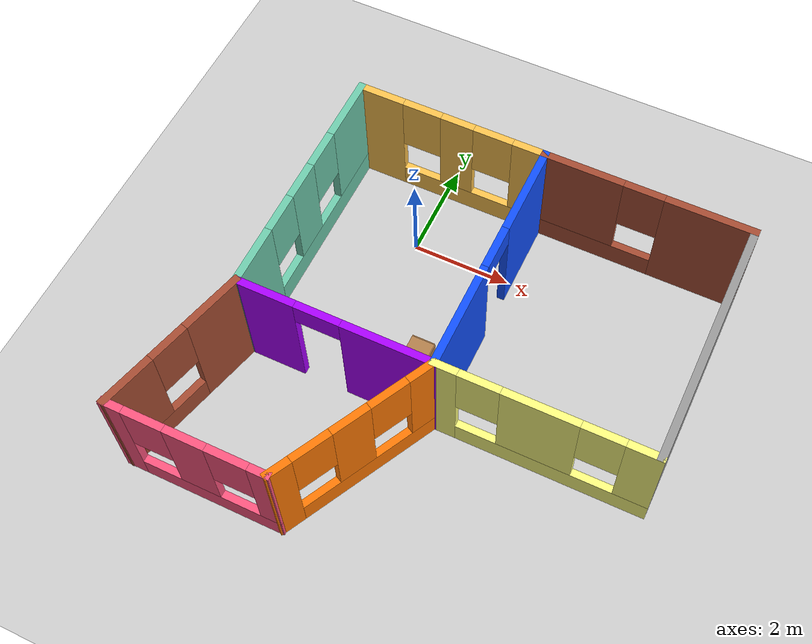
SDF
<sdf version="1.6">
 <world name="default">
  <light name="sun" type="directional">
   <pose>0 0 10 0 -0 0</pose>
   <diffuse>0.8 0.8 0.8 1</diffuse>
   <specular>0.2 0.2 0.2 1</specular>
   <attenuation>
    <range>1000</range>
    <constant>0.9</constant>
    <linear>0.01</linear>
    <quadratic>0.001</quadratic>
   </attenuation>
   <direction>-0.5 0.1 -0.9</direction>
  </light>
  <model name="ground_plane">
   <static>1</static>
   <link name="link">
    <collision name="collision">
     <geometry><plane><normal>0 0 1</normal><size>100 100</size></plane></geometry>
     <surface>
      <contact><collide_bitmask>65535</collide_bitmask></contact>
      <friction><ode><mu>100</mu><mu2>50</mu2></ode></friction>
     </surface>
    </collision>
    <visual name="visual">
     <cast_shadows>0</cast_shadows>
     <geometry><plane><normal>0 0 1</normal><size>100 100</size></plane></geometry>
     <material>
      <script><uri>file://media/materials/scripts/gazebo.material</uri><name>Gazebo/Grey</name></script>
     </material>
    </visual>
   </link>
  </model>
  <gravity>0 0 -9.8</gravity>
  <magnetic_field>6e-06 2.3e-05 -4.2e-05</magnetic_field>
  <atmosphere type="adiabatic"/>
  <physics name="default_physics" default="0" type="ode">
   <max_step_size>0.001</max_step_size>
   <real_time_factor>1</real_time_factor>
   <real_time_update_rate>1000</real_time_update_rate>
  </physics>
  <scene><ambient>0.4 0.4 0.4 1</ambient><background>0.7 0.7 0.7 1</background><shadows>1</shadows></scene>
  <spherical_coordinates>
   <surface_model>EARTH_WGS84</surface_model>
   <latitude_deg>0</latitude_deg>
   <longitude_deg>0</longitude_deg>
   <elevation>0</elevation>
   <heading_deg>0</heading_deg>
  </spherical_coordinates>
  <model name="small_world">
   <pose>1.73786 -2.4945 0 0 -0 0</pose>
   <link name="Wall_1">
    <pose>-3.5654 1.51024 0 0 -0 1.5708</pose>
    <visual name="Wall_1_Visual_0">
     <pose>-1.87398 0 1.25 0 -0 0</pose>
     <geometry><box><size>1.25205 0.15 2.5</size></box></geometry>
     <material>
      <script><uri>file://media/materials/scripts/gazebo.material</uri><name>Gazebo/Grey</name></script>
      <ambient>0.435294 0.796078 0.67451 1</ambient>
     </material>
     <meta><layer>0</layer></meta>
    </visual>
    <collision name="Wall_1_Collision_0">
     <geometry><box><size>1.25205 0.15 2.5</size></box></geometry>
     <pose>-1.87398 0 1.25 0 -0 0</pose>
    </collision>
    <visual name="Wall_1_Visual_1">
     <pose>0.626024 0 0.25 0 -0 0</pose>
     <geometry><box><size>3.74795 0.15 0.5</size></box></geometry>
     <material>
      <script><uri>file://media/materials/scripts/gazebo.material</uri><name>Gazebo/Grey</name></script>
      <ambient>0.435294 0.796078 0.67451 1</ambient>
     </material>
     <meta><layer>0</layer></meta>
    </visual>
    <collision name="Wall_1_Collision_1">
     <geometry><box><size>3.74795 0.15 0.5</size></box></geometry>
     <pose>0.626024 0 0.25 0 -0 0</pose>
    </collision>
    <visual name="Wall_1_Visual_2">
     <pose>-0.049947 0 1.5 0 -0 0</pose>
     <geometry><box><size>0.796012 0.15 2</size></box></geometry>
     <material>
      <script><uri>file://media/materials/scripts/gazebo.material</uri><name>Gazebo/Grey</name></script>
      <ambient>0.435294 0.796078 0.67451 1</ambient>
     </material>
     <meta><layer>0</layer></meta>
    </visual>
    <collision name="Wall_1_Collision_2">
     <geometry><box><size>0.796012 0.15 2</size></box></geometry>
     <pose>-0.049947 0 1.5 0 -0 0</pose>
    </collision>
    <visual name="Wall_1_Visual_3">
     <pose>1.82403 0 1.5 0 -0 0</pose>
     <geometry><box><size>1.35194 0.15 2</size></box></geometry>
     <material>
      <script><uri>file://media/materials/scripts/gazebo.material</uri><name>Gazebo/Grey</name></script>
      <ambient>0.435294 0.796078 0.67451 1</ambient>
     </material>
     <meta><layer>0</layer></meta>
    </visual>
    <collision name="Wall_1_Collision_3">
     <geometry><box><size>1.35194 0.15 2</size></box></geometry>
     <pose>1.82403 0 1.5 0 -0 0</pose>
    </collision>
    <visual name="Wall_1_Visual_4">
     <pose>-0.847953 0 1.9 0 -0 0</pose>
     <geometry><box><size>0.8 0.15 1.2</size></box></geometry>
     <material>
      <script><uri>file://media/materials/scripts/gazebo.material</uri><name>Gazebo/Grey</name></script>
      <ambient>0.435294 0.796078 0.67451 1</ambient>
     </material>
     <meta><layer>0</layer></meta>
    </visual>
    <collision name="Wall_1_Collision_4">
     <geometry><box><size>0.8 0.15 1.2</size></box></geometry>
     <pose>-0.847953 0 1.9 0 -0 0</pose>
    </collision>
    <visual name="Wall_1_Visual_5">
     <pose>0.748059 0 1.9 0 -0 0</pose>
     <geometry><box><size>0.8 0.15 1.2</size></box></geometry>
     <material>
      <script><uri>file://media/materials/scripts/gazebo.material</uri><name>Gazebo/Grey</name></script>
      <ambient>0.435294 0.796078 0.67451 1</ambient>
     </material>
     <meta><layer>0</layer></meta>
    </visual>
    <collision name="Wall_1_Collision_5">
     <geometry><box><size>0.8 0.15 1.2</size></box></geometry>
     <pose>0.748059 0 1.9 0 -0 0</pose>
    </collision>
   </link>
   <link name="Wall_10">
    <pose>2.3346 3.93524 0 0 -0 3.14159</pose>
    <visual name="Wall_10_Visual_0">
     <pose>-1.22969 0 1.25 0 -0 0</pose>
     <geometry><box><size>1.79062 0.15 2.5</size></box></geometry>
     <material>
      <script><uri>file://media/materials/scripts/gazebo.material</uri><name>Gazebo/Bricks</name></script>
      <ambient>1 1 1 1</ambient>
     </material>
     <meta><layer>0</layer></meta>
    </visual>
    <collision name="Wall_10_Collision_0">
     <geometry><box><size>1.79062 0.15 2.5</size></box></geometry>
     <pose>-1.22969 0 1.25 0 -0 0</pose>
    </collision>
    <visual name="Wall_10_Visual_1">
     <pose>0.89531 0 0.25 0 -0 0</pose>
     <geometry><box><size>2.45938 0.15 0.5</size></box></geometry>
     <material>
      <script><uri>file://media/materials/scripts/gazebo.material</uri><name>Gazebo/Bricks</name></script>
      <ambient>1 1 1 1</ambient>
     </material>
     <meta><layer>0</layer></meta>
    </visual>
    <collision name="Wall_10_Collision_1">
     <geometry><box><size>2.45938 0.15 0.5</size></box></geometry>
     <pose>0.89531 0 0.25 0 -0 0</pose>
    </collision>
    <visual name="Wall_10_Visual_2">
     <pose>1.29531 0 1.5 0 -0 0</pose>
     <geometry><box><size>1.65938 0.15 2</size></box></geometry>
     <material>
      <script><uri>file://media/materials/scripts/gazebo.material</uri><name>Gazebo/Bricks</name></script>
      <ambient>1 1 1 1</ambient>
     </material>
     <meta><layer>0</layer></meta>
    </visual>
    <collision name="Wall_10_Collision_2">
     <geometry><box><size>1.65938 0.15 2</size></box></geometry>
     <pose>1.29531 0 1.5 0 -0 0</pose>
    </collision>
    <visual name="Wall_10_Visual_3">
     <pose>0.06562 0 1.9 0 -0 0</pose>
     <geometry><box><size>0.8 0.15 1.2</size></box></geometry>
     <material>
      <script><uri>file://media/materials/scripts/gazebo.material</uri><name>Gazebo/Bricks</name></script>
      <ambient>1 1 1 1</ambient>
     </material>
     <meta><layer>0</layer></meta>
    </visual>
    <collision name="Wall_10_Collision_3">
     <geometry><box><size>0.8 0.15 1.2</size></box></geometry>
     <pose>0.06562 0 1.9 0 -0 0</pose>
    </collision>
   </link>
   <link name="Wall_2">
    <pose>-1.6404 3.93524 0 0 -0 0</pose>
    <visual name="Wall_2_Visual_0">
     <pose>-1.50054 0 1.25 0 -0 0</pose>
     <geometry><box><size>0.998911 0.15 2.5</size></box></geometry>
     <material>
      <script><uri>file://media/materials/scripts/gazebo.material</uri><name>Gazebo/Grey</name></script>
      <ambient>1 0.764706 0.305882 1</ambient>
     </material>
     <meta><layer>0</layer></meta>
    </visual>
    <collision name="Wall_2_Collision_0">
     <geometry><box><size>0.998911 0.15 2.5</size></box></geometry>
     <pose>-1.50054 0 1.25 0 -0 0</pose>
    </collision>
    <visual name="Wall_2_Visual_1">
     <pose>0.499456 0 0.25 0 -0 0</pose>
     <geometry><box><size>3.00109 0.15 0.5</size></box></geometry>
     <material>
      <script><uri>file://media/materials/scripts/gazebo.material</uri><name>Gazebo/Grey</name></script>
      <ambient>1 0.764706 0.305882 1</ambient>
     </material>
     <meta><layer>0</layer></meta>
    </visual>
    <collision name="Wall_2_Collision_1">
     <geometry><box><size>3.00109 0.15 0.5</size></box></geometry>
     <pose>0.499456 0 0.25 0 -0 0</pose>
    </collision>
    <visual name="Wall_2_Visual_2">
     <pose>0.139091 0 1.5 0 -0 0</pose>
     <geometry><box><size>0.680359 0.15 2</size></box></geometry>
     <material>
      <script><uri>file://media/materials/scripts/gazebo.material</uri><name>Gazebo/Grey</name></script>
      <ambient>1 0.764706 0.305882 1</ambient>
     </material>
     <meta><layer>0</layer></meta>
    </visual>
    <collision name="Wall_2_Collision_2">
     <geometry><box><size>0.680359 0.15 2</size></box></geometry>
     <pose>0.139091 0 1.5 0 -0 0</pose>
    </collision>
    <visual name="Wall_2_Visual_3">
     <pose>1.63963 0 1.5 0 -0 0</pose>
     <geometry><box><size>0.72073 0.15 2</size></box></geometry>
     <material>
      <script><uri>file://media/materials/scripts/gazebo.material</uri><name>Gazebo/Grey</name></script>
      <ambient>1 0.764706 0.305882 1</ambient>
     </material>
     <meta><layer>0</layer></meta>
    </visual>
    <collision name="Wall_2_Collision_3">
     <geometry><box><size>0.72073 0.15 2</size></box></geometry>
     <pose>1.63963 0 1.5 0 -0 0</pose>
    </collision>
    <visual name="Wall_2_Visual_4">
     <pose>-0.601089 0 1.9 0 -0 0</pose>
     <geometry><box><size>0.8 0.15 1.2</size></box></geometry>
     <material>
      <script><uri>file://media/materials/scripts/gazebo.material</uri><name>Gazebo/Grey</name></script>
      <ambient>1 0.764706 0.305882 1</ambient>
     </material>
     <meta><layer>0</layer></meta>
    </visual>
    <collision name="Wall_2_Collision_4">
     <geometry><box><size>0.8 0.15 1.2</size></box></geometry>
     <pose>-0.601089 0 1.9 0 -0 0</pose>
    </collision>
    <visual name="Wall_2_Visual_5">
     <pose>0.87927 0 1.9 0 -0 0</pose>
     <geometry><box><size>0.8 0.15 1.2</size></box></geometry>
     <material>
      <script><uri>file://media/materials/scripts/gazebo.material</uri><name>Gazebo/Grey</name></script>
      <ambient>1 0.764706 0.305882 1</ambient>
     </material>
     <meta><layer>0</layer></meta>
    </visual>
    <collision name="Wall_2_Collision_5">
     <geometry><box><size>0.8 0.15 1.2</size></box></geometry>
     <pose>0.87927 0 1.9 0 -0 0</pose>
    </collision>
   </link>
   <link name="Wall_3">
    <pose>0.284597 1.51024 0 0 0 -1.5708</pose>
    <visual name="Wall_3_Visual_0">
     <pose>-1.54833 0 1.25 0 -0 0</pose>
     <geometry><box><size>1.90334 0.15 2.5</size></box></geometry>
     <material>
      <script><uri>file://media/materials/scripts/gazebo.material</uri><name>Gazebo/Grey</name></script>
      <ambient>0.0666667 0.313726 1 1</ambient>
     </material>
     <meta><layer>0</layer></meta>
    </visual>
    <collision name="Wall_3_Collision_0">
     <geometry><box><size>1.90334 0.15 2.5</size></box></geometry>
     <pose>-1.54833 0 1.25 0 -0 0</pose>
    </collision>
    <visual name="Wall_3_Visual_1">
     <pose>1.40167 0 1.25 0 -0 0</pose>
     <geometry><box><size>2.19666 0.15 2.5</size></box></geometry>
     <material>
      <script><uri>file://media/materials/scripts/gazebo.material</uri><name>Gazebo/Grey</name></script>
      <ambient>0.0666667 0.313726 1 1</ambient>
     </material>
     <meta><layer>0</layer></meta>
    </visual>
    <collision name="Wall_3_Collision_1">
     <geometry><box><size>2.19666 0.15 2.5</size></box></geometry>
     <pose>1.40167 0 1.25 0 -0 0</pose>
    </collision>
    <visual name="Wall_3_Visual_2">
     <pose>-0.146663 0 2.25 0 -0 0</pose>
     <geometry><box><size>0.9 0.15 0.5</size></box></geometry>
     <material>
      <script><uri>file://media/materials/scripts/gazebo.material</uri><name>Gazebo/Grey</name></script>
      <ambient>0.0666667 0.313726 1 1</ambient>
     </material>
     <meta><layer>0</layer></meta>
    </visual>
    <collision name="Wall_3_Collision_2">
     <geometry><box><size>0.9 0.15 0.5</size></box></geometry>
     <pose>-0.146663 0 2.25 0 -0 0</pose>
    </collision>
   </link>
   <link name="Wall_4">
    <pose>-1.6404 -0.914764 0 0 -0 3.14159</pose>
    <visual name="Wall_4_Visual_0">
     <pose>-1.07481 0 1.25 0 -0 0</pose>
     <geometry><box><size>1.85039 0.15 2.5</size></box></geometry>
     <material>
      <script><uri>file://media/materials/scripts/gazebo.material</uri><name>Gazebo/Grey</name></script>
      <ambient>0.666667 0 1 1</ambient>
     </material>
     <meta><layer>0</layer></meta>
    </visual>
    <collision name="Wall_4_Collision_0">
     <geometry><box><size>1.85039 0.15 2.5</size></box></geometry>
     <pose>-1.07481 0 1.25 0 -0 0</pose>
    </collision>
    <visual name="Wall_4_Visual_1">
     <pose>1.37519 0 1.25 0 -0 0</pose>
     <geometry><box><size>1.24961 0.15 2.5</size></box></geometry>
     <material>
      <script><uri>file://media/materials/scripts/gazebo.material</uri><name>Gazebo/Grey</name></script>
      <ambient>0.666667 0 1 1</ambient>
     </material>
     <meta><layer>0</layer></meta>
    </visual>
    <collision name="Wall_4_Collision_1">
     <geometry><box><size>1.24961 0.15 2.5</size></box></geometry>
     <pose>1.37519 0 1.25 0 -0 0</pose>
    </collision>
    <visual name="Wall_4_Visual_2">
     <pose>0.300391 0 2.25 0 -0 0</pose>
     <geometry><box><size>0.9 0.15 0.5</size></box></geometry>
     <material>
      <script><uri>file://media/materials/scripts/gazebo.material</uri><name>Gazebo/Grey</name></script>
      <ambient>0.666667 0 1 1</ambient>
     </material>
     <meta><layer>0</layer></meta>
    </visual>
    <collision name="Wall_4_Collision_2">
     <geometry><box><size>0.9 0.15 0.5</size></box></geometry>
     <pose>0.300391 0 2.25 0 -0 0</pose>
    </collision>
   </link>
   <link name="Wall_5">
    <pose>-3.96657 -2.41195 0 0 0 -1.8326</pose>
    <visual name="Wall_5_Visual_0">
     <pose>-0.968518 0 1.25 0 -0 0</pose>
     <geometry><box><size>1.31296 0.15 2.5</size></box></geometry>
     <material>
      <script><uri>file://media/materials/scripts/gazebo.material</uri><name>Gazebo/Bricks</name></script>
      <ambient>1 1 1 1</ambient>
     </material>
     <meta><layer>0</layer></meta>
    </visual>
    <collision name="Wall_5_Collision_0">
     <geometry><box><size>1.31296 0.15 2.5</size></box></geometry>
     <pose>-0.968518 0 1.25 0 -0 0</pose>
    </collision>
    <visual name="Wall_5_Visual_1">
     <pose>0.656482 0 0.25 0 -0 0</pose>
     <geometry><box><size>1.93704 0.15 0.5</size></box></geometry>
     <material>
      <script><uri>file://media/materials/scripts/gazebo.material</uri><name>Gazebo/Bricks</name></script>
      <ambient>1 1 1 1</ambient>
     </material>
     <meta><layer>0</layer></meta>
    </visual>
    <collision name="Wall_5_Collision_1">
     <geometry><box><size>1.93704 0.15 0.5</size></box></geometry>
     <pose>0.656482 0 0.25 0 -0 0</pose>
    </collision>
    <visual name="Wall_5_Visual_2">
     <pose>1.05648 0 1.5 0 -0 0</pose>
     <geometry><box><size>1.13704 0.15 2</size></box></geometry>
     <material>
      <script><uri>file://media/materials/scripts/gazebo.material</uri><name>Gazebo/Bricks</name></script>
      <ambient>1 1 1 1</ambient>
     </material>
     <meta><layer>0</layer></meta>
    </visual>
    <collision name="Wall_5_Collision_2">
     <geometry><box><size>1.13704 0.15 2</size></box></geometry>
     <pose>1.05648 0 1.5 0 -0 0</pose>
    </collision>
    <visual name="Wall_5_Visual_3">
     <pose>0.087963 0 1.9 0 -0 0</pose>
     <geometry><box><size>0.8 0.15 1.2</size></box></geometry>
     <material>
      <script><uri>file://media/materials/scripts/gazebo.material</uri><name>Gazebo/Bricks</name></script>
      <ambient>1 1 1 1</ambient>
     </material>
     <meta><layer>0</layer></meta>
    </visual>
    <collision name="Wall_5_Collision_3">
     <geometry><box><size>0.8 0.15 1.2</size></box></geometry>
     <pose>0.087963 0 1.9 0 -0 0</pose>
    </collision>
   </link>
   <link name="Wall_6">
    <pose>-2.81774 -3.90913 0 0 -0 0</pose>
    <visual name="Wall_6_Visual_0">
     <pose>-1.40673 0 1.25 0 -0 0</pose>
     <geometry><box><size>0.436545 0.15 2.5</size></box></geometry>
     <material>
      <script><uri>file://media/materials/scripts/gazebo.material</uri><name>Gazebo/Grey</name></script>
      <ambient>1 0.333333 0.498039 1</ambient>
     </material>
     <meta><layer>0</layer></meta>
    </visual>
    <collision name="Wall_6_Collision_0">
     <geometry><box><size>0.436545 0.15 2.5</size></box></geometry>
     <pose>-1.40673 0 1.25 0 -0 0</pose>
    </collision>
    <visual name="Wall_6_Visual_1">
     <pose>0.218272 0 0.25 0 -0 0</pose>
     <geometry><box><size>2.81345 0.15 0.5</size></box></geometry>
     <material>
      <script><uri>file://media/materials/scripts/gazebo.material</uri><name>Gazebo/Grey</name></script>
      <ambient>1 0.333333 0.498039 1</ambient>
     </material>
     <meta><layer>0</layer></meta>
    </visual>
    <collision name="Wall_6_Collision_1">
     <geometry><box><size>2.81345 0.15 0.5</size></box></geometry>
     <pose>0.218272 0 0.25 0 -0 0</pose>
    </collision>
    <visual name="Wall_6_Visual_2">
     <pose>0.00955 0 1.5 0 -0 0</pose>
     <geometry><box><size>0.796012 0.15 2</size></box></geometry>
     <material>
      <script><uri>file://media/materials/scripts/gazebo.material</uri><name>Gazebo/Grey</name></script>
      <ambient>1 0.333333 0.498039 1</ambient>
     </material>
     <meta><layer>0</layer></meta>
    </visual>
    <collision name="Wall_6_Collision_2">
     <geometry><box><size>0.796012 0.15 2</size></box></geometry>
     <pose>0.00955 0 1.5 0 -0 0</pose>
    </collision>
    <visual name="Wall_6_Visual_3">
     <pose>1.41628 0 1.5 0 -0 0</pose>
     <geometry><box><size>0.417444 0.15 2</size></box></geometry>
     <material>
      <script><uri>file://media/materials/scripts/gazebo.material</uri><name>Gazebo/Grey</name></script>
      <ambient>1 0.333333 0.498039 1</ambient>
     </material>
     <meta><layer>0</layer></meta>
    </visual>
    <collision name="Wall_6_Collision_3">
     <geometry><box><size>0.417444 0.15 2</size></box></geometry>
     <pose>1.41628 0 1.5 0 -0 0</pose>
    </collision>
    <visual name="Wall_6_Visual_4">
     <pose>-0.788455 0 1.9 0 -0 0</pose>
     <geometry><box><size>0.8 0.15 1.2</size></box></geometry>
     <material>
      <script><uri>file://media/materials/scripts/gazebo.material</uri><name>Gazebo/Grey</name></script>
      <ambient>1 0.333333 0.498039 1</ambient>
     </material>
     <meta><layer>0</layer></meta>
    </visual>
    <collision name="Wall_6_Collision_4">
     <geometry><box><size>0.8 0.15 1.2</size></box></geometry>
     <pose>-0.788455 0 1.9 0 -0 0</pose>
    </collision>
    <visual name="Wall_6_Visual_5">
     <pose>0.807556 0 1.9 0 -0 0</pose>
     <geometry><box><size>0.8 0.15 1.2</size></box></geometry>
     <material>
      <script><uri>file://media/materials/scripts/gazebo.material</uri><name>Gazebo/Grey</name></script>
      <ambient>1 0.333333 0.498039 1</ambient>
     </material>
     <meta><layer>0</layer></meta>
    </visual>
    <collision name="Wall_6_Collision_5">
     <geometry><box><size>0.8 0.15 1.2</size></box></geometry>
     <pose>0.807556 0 1.9 0 -0 0</pose>
    </collision>
   </link>
   <link name="Wall_7">
    <pose>-0.491572 -2.41195 0 0 -0 1.09252</pose>
    <visual name="Wall_7_Visual_0">
     <pose>-1.5 0 1.25 0 -0 0</pose>
     <geometry><box><size>0.522831 0.15 2.5</size></box></geometry>
     <material>
      <script><uri>file://media/materials/scripts/gazebo.material</uri><name>Gazebo/Grey</name></script>
      <ambient>0.996078 0.47451 0.0196078 1</ambient>
     </material>
     <meta><layer>0</layer></meta>
    </visual>
    <collision name="Wall_7_Collision_0">
     <geometry><box><size>0.522831 0.15 2.5</size></box></geometry>
     <pose>-1.5 0 1.25 0 -0 0</pose>
    </collision>
    <visual name="Wall_7_Visual_1">
     <pose>0.261415 0 0.25 0 -0 0</pose>
     <geometry><box><size>3 0.15 0.5</size></box></geometry>
     <material>
      <script><uri>file://media/materials/scripts/gazebo.material</uri><name>Gazebo/Grey</name></script>
      <ambient>0.996078 0.47451 0.0196078 1</ambient>
     </material>
     <meta><layer>0</layer></meta>
    </visual>
    <collision name="Wall_7_Collision_1">
     <geometry><box><size>3 0.15 0.5</size></box></geometry>
     <pose>0.261415 0 0.25 0 -0 0</pose>
    </collision>
    <visual name="Wall_7_Visual_2">
     <pose>-0.04993 0 1.5 0 -0 0</pose>
     <geometry><box><size>0.777313 0.15 2</size></box></geometry>
     <material>
      <script><uri>file://media/materials/scripts/gazebo.material</uri><name>Gazebo/Grey</name></script>
      <ambient>0.996078 0.47451 0.0196078 1</ambient>
     </material>
     <meta><layer>0</layer></meta>
    </visual>
    <collision name="Wall_7_Collision_2">
     <geometry><box><size>0.777313 0.15 2</size></box></geometry>
     <pose>-0.04993 0 1.5 0 -0 0</pose>
    </collision>
    <visual name="Wall_7_Visual_3">
     <pose>1.45007 0 1.5 0 -0 0</pose>
     <geometry><box><size>0.62269 0.15 2</size></box></geometry>
     <material>
      <script><uri>file://media/materials/scripts/gazebo.material</uri><name>Gazebo/Grey</name></script>
      <ambient>0.996078 0.47451 0.0196078 1</ambient>
     </material>
     <meta><layer>0</layer></meta>
    </visual>
    <collision name="Wall_7_Collision_3">
     <geometry><box><size>0.62269 0.15 2</size></box></geometry>
     <pose>1.45007 0 1.5 0 -0 0</pose>
    </collision>
    <visual name="Wall_7_Visual_4">
     <pose>-0.838586 0 1.9 0 -0 0</pose>
     <geometry><box><size>0.8 0.15 1.2</size></box></geometry>
     <material>
      <script><uri>file://media/materials/scripts/gazebo.material</uri><name>Gazebo/Grey</name></script>
      <ambient>0.996078 0.47451 0.0196078 1</ambient>
     </material>
     <meta><layer>0</layer></meta>
    </visual>
    <collision name="Wall_7_Collision_4">
     <geometry><box><size>0.8 0.15 1.2</size></box></geometry>
     <pose>-0.838586 0 1.9 0 -0 0</pose>
    </collision>
    <visual name="Wall_7_Visual_5">
     <pose>0.738727 0 1.9 0 -0 0</pose>
     <geometry><box><size>0.8 0.15 1.2</size></box></geometry>
     <material>
      <script><uri>file://media/materials/scripts/gazebo.material</uri><name>Gazebo/Grey</name></script>
      <ambient>0.996078 0.47451 0.0196078 1</ambient>
     </material>
     <meta><layer>0</layer></meta>
    </visual>
    <collision name="Wall_7_Collision_5">
     <geometry><box><size>0.8 0.15 1.2</size></box></geometry>
     <pose>0.738727 0 1.9 0 -0 0</pose>
    </collision>
   </link>
   <link name="Wall_8">
    <pose>2.3346 -0.914764 0 0 -0 0</pose>
    <visual name="Wall_8_Visual_0">
     <pose>-1.86201 0 1.25 0 -0 0</pose>
     <geometry><box><size>0.52598 0.15 2.5</size></box></geometry>
     <material>
      <script><uri>file://media/materials/scripts/gazebo.material</uri><name>Gazebo/Grey</name></script>
      <ambient>1 1 0.498039 1</ambient>
     </material>
     <meta><layer>0</layer></meta>
    </visual>
    <collision name="Wall_8_Collision_0">
     <geometry><box><size>0.52598 0.15 2.5</size></box></geometry>
     <pose>-1.86201 0 1.25 0 -0 0</pose>
    </collision>
    <visual name="Wall_8_Visual_1">
     <pose>0.26299 0 0.25 0 -0 0</pose>
     <geometry><box><size>3.72402 0.15 0.5</size></box></geometry>
     <material>
      <script><uri>file://media/materials/scripts/gazebo.material</uri><name>Gazebo/Grey</name></script>
      <ambient>1 1 0.498039 1</ambient>
     </material>
     <meta><layer>0</layer></meta>
    </visual>
    <collision name="Wall_8_Collision_1">
     <geometry><box><size>3.72402 0.15 0.5</size></box></geometry>
     <pose>0.26299 0 0.25 0 -0 0</pose>
    </collision>
    <visual name="Wall_8_Visual_2">
     <pose>-0.077185 0 1.5 0 -0 0</pose>
     <geometry><box><size>1.44367 0.15 2</size></box></geometry>
     <material>
      <script><uri>file://media/materials/scripts/gazebo.material</uri><name>Gazebo/Grey</name></script>
      <ambient>1 1 0.498039 1</ambient>
     </material>
     <meta><layer>0</layer></meta>
    </visual>
    <collision name="Wall_8_Collision_2">
     <geometry><box><size>1.44367 0.15 2</size></box></geometry>
     <pose>-0.077185 0 1.5 0 -0 0</pose>
    </collision>
    <visual name="Wall_8_Visual_3">
     <pose>1.78483 0 1.5 0 -0 0</pose>
     <geometry><box><size>0.680351 0.15 2</size></box></geometry>
     <material>
      <script><uri>file://media/materials/scripts/gazebo.material</uri><name>Gazebo/Grey</name></script>
      <ambient>1 1 0.498039 1</ambient>
     </material>
     <meta><layer>0</layer></meta>
    </visual>
    <collision name="Wall_8_Collision_3">
     <geometry><box><size>0.680351 0.15 2</size></box></geometry>
     <pose>1.78483 0 1.5 0 -0 0</pose>
    </collision>
    <visual name="Wall_8_Visual_4">
     <pose>-1.19902 0 1.9 0 -0 0</pose>
     <geometry><box><size>0.8 0.15 1.2</size></box></geometry>
     <material>
      <script><uri>file://media/materials/scripts/gazebo.material</uri><name>Gazebo/Grey</name></script>
      <ambient>1 1 0.498039 1</ambient>
     </material>
     <meta><layer>0</layer></meta>
    </visual>
    <collision name="Wall_8_Collision_4">
     <geometry><box><size>0.8 0.15 1.2</size></box></geometry>
     <pose>-1.19902 0 1.9 0 -0 0</pose>
    </collision>
    <visual name="Wall_8_Visual_5">
     <pose>1.04465 0 1.9 0 -0 0</pose>
     <geometry><box><size>0.8 0.15 1.2</size></box></geometry>
     <material>
      <script><uri>file://media/materials/scripts/gazebo.material</uri><name>Gazebo/Grey</name></script>
      <ambient>1 1 0.498039 1</ambient>
     </material>
     <meta><layer>0</layer></meta>
    </visual>
    <collision name="Wall_8_Collision_5">
     <geometry><box><size>0.8 0.15 1.2</size></box></geometry>
     <pose>1.04465 0 1.9 0 -0 0</pose>
    </collision>
   </link>
   <link name="Wall_9">
    <collision name="Wall_9_Collision">
     <geometry><box><size>5 0.15 2.5</size></box></geometry>
     <pose>0 0 1.25 0 -0 0</pose>
    </collision>
    <visual name="Wall_9_Visual">
     <pose>0 0 1.25 0 -0 0</pose>
     <geometry><box><size>5 0.15 2.5</size></box></geometry>
     <material>
      <script><uri>file://media/materials/scripts/gazebo.material</uri><name>Gazebo/Grey</name></script>
      <ambient>1 1 1 1</ambient>
     </material>
     <meta><layer>0</layer></meta>
    </visual>
    <pose>4.3846 1.51024 0 0 -0 1.5708</pose>
   </link>
   <static>1</static>
  </model>
  <model name="cabinet">
   <static>1</static>
   <link name="cabinet_bottom_plate">
    <inertial>
     <pose>0 0 -1 0 -0 0</pose>
     <inertia><ixx>2.05</ixx><ixy>0</ixy><ixz>0</ixz><iyy>2.05</iyy><iyz>0</iyz><izz>2.05</izz></inertia>
     <mass>25</mass>
    </inertial>
    <collision name="cabinet_bottom_plate_geom">
     <pose>0 0 0.01 0 -0 0</pose>
     <geometry><box><size>0.45 0.45 0.02</size></box></geometry>
    </collision>
    <visual name="cabinet_bottom_plate_geom_visual">
     <pose>0 0 0.01 0 -0 0</pose>
     <geometry><box><size>0.45 0.45 0.02</size></box></geometry>
     <material>
      <script><uri>file://media/materials/scripts/gazebo.material</uri><name>Gazebo/Wood</name></script>
     </material>
    </visual>
    <collision name="cabinet_bottom_plate_geom_cabinet_back_plate">
     <pose>0.235 0 0.51 0 -0 0</pose>
     <geometry><box><size>0.02 0.45 1.02</size></box></geometry>
    </collision>
    <visual name="cabinet_bottom_plate_geom_cabinet_back_plate_visual">
     <pose>0.235 0 0.51 0 -0 0</pose>
     <geometry><box><size>0.02 0.45 1.02</size></box></geometry>
     <material>
      <script><uri>file://media/materials/scripts/gazebo.material</uri><name>Gazebo/Wood</name></script>
     </material>
    </visual>
    <collision name="cabinet_bottom_plate_geom_cabinet_left_plate">
     <pose>0 0.235 0.51 0 -0 0</pose>
     <geometry><box><size>0.45 0.02 1.02</size></box></geometry>
    </collision>
    <visual name="cabinet_bottom_plate_geom_cabinet_left_plate_visual">
     <pose>0 0.235 0.51 0 -0 0</pose>
     <geometry><box><size>0.45 0.02 1.02</size></box></geometry>
     <material>
      <script><uri>file://media/materials/scripts/gazebo.material</uri><name>Gazebo/Wood</name></script>
     </material>
    </visual>
    <collision name="cabinet_bottom_plate_geom_cabinet_middle_plate">
     <pose>0 0 0.51 0 -0 0</pose>
     <geometry><box><size>0.45 0.45 0.02</size></box></geometry>
    </collision>
    <visual name="cabinet_bottom_plate_geom_cabinet_middle_plate_visual">
     <pose>0 0 0.51 0 -0 0</pose>
     <geometry><box><size>0.45 0.45 0.02</size></box></geometry>
     <material>
      <script><uri>file://media/materials/scripts/gazebo.material</uri><name>Gazebo/Wood</name></script>
     </material>
    </visual>
    <collision name="cabinet_bottom_plate_geom_cabinet_right_plate">
     <pose>0 -0.235 0.51 0 -0 0</pose>
     <geometry><box><size>0.45 0.02 1.02</size></box></geometry>
    </collision>
    <visual name="cabinet_bottom_plate_geom_cabinet_right_plate_visual">
     <pose>0 -0.235 0.51 0 -0 0</pose>
     <geometry><box><size>0.45 0.02 1.02</size></box></geometry>
     <material>
      <script><uri>file://media/materials/scripts/gazebo.material</uri><name>Gazebo/Wood</name></script>
     </material>
    </visual>
    <collision name="cabinet_bottom_plate_geom_cabinet_top_plate">
     <pose>0 0 1.01 0 -0 0</pose>
     <geometry><box><size>0.45 0.45 0.02</size></box></geometry>
    </collision>
    <visual name="cabinet_bottom_plate_geom_cabinet_top_plate_visual">
     <pose>0 0 1.01 0 -0 0</pose>
     <geometry><box><size>0.45 0.45 0.02</size></box></geometry>
     <material>
      <script><uri>file://media/materials/scripts/gazebo.material</uri><name>Gazebo/Wood</name></script>
     </material>
    </visual>
   </link>
   <pose>1.31241 -2.59984 0 0 -0 0</pose>
  </model>
 </world>
</sdf>
